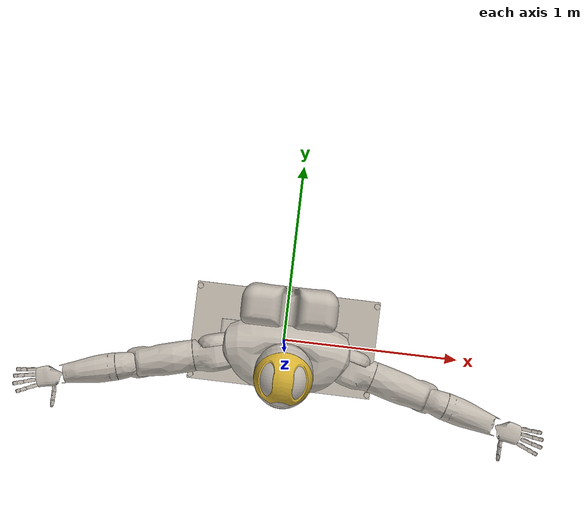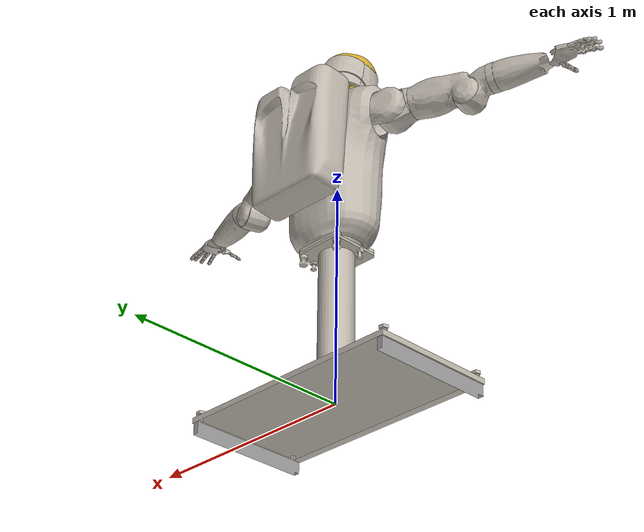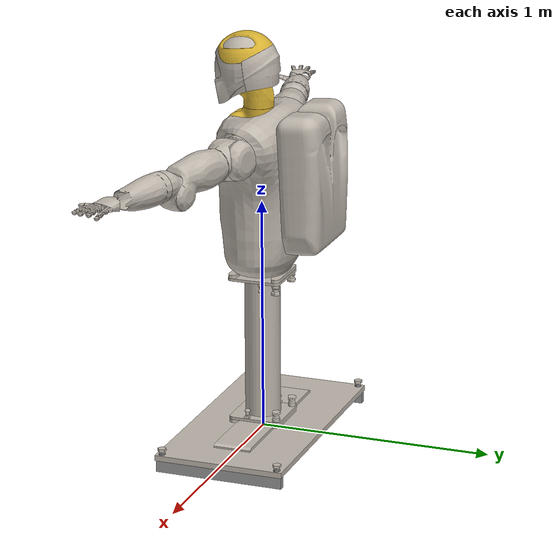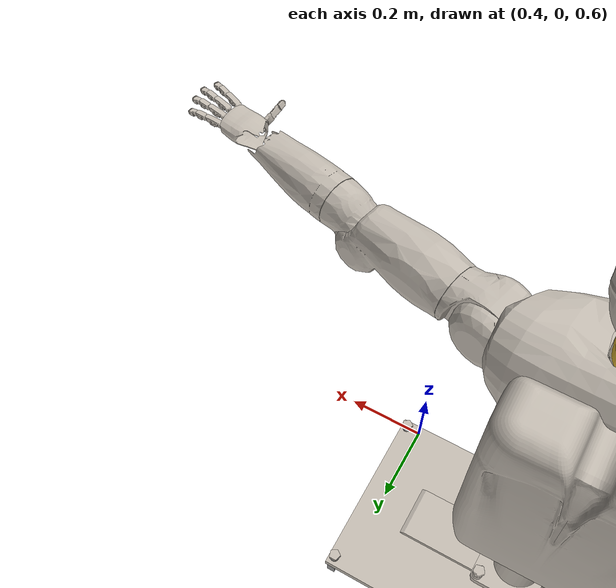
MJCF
<mujoco model="r2_scene">
  <include file="r2.xml"/>

  <statistic center="0 -0.06 0.83" extent="1.4"/>

  <visual>
    <headlight diffuse="0.0 0.0 0.0" ambient="0.35 0.35 0.35" specular="0.0 0.0 0.0"/>
    <quality shadowsize="0"/>
    <rgba haze="1 1 1 1"/>
    <global offwidth="1920" offheight="1920" azimuth="60" elevation="-20"/>
  </visual>

  <asset>
    <texture type="skybox" builtin="gradient" rgb1="1 1 1" rgb2="1 1 1" width="512" height="3072"/>
    <texture type="2d" name="groundplane" builtin="flat" rgb1="1 1 1" width="300" height="300"/>
    <material name="groundplane" texture="groundplane" texuniform="true" texrepeat="5 5" reflectance="0.0"/>
  </asset>

  <worldbody>
    <light pos="1 -1 3.0" dir="-0.5 0.5 -0.8" directional="true" diffuse="0.9 0.9 0.9" specular="0.0 0.0 0.0"/>
    <light pos="-1 1 3.0" dir="0.4 -0.3 -0.6" directional="true" diffuse="0.45 0.45 0.45" specular="0.0 0.0 0.0"/>
  </worldbody>
</mujoco>
